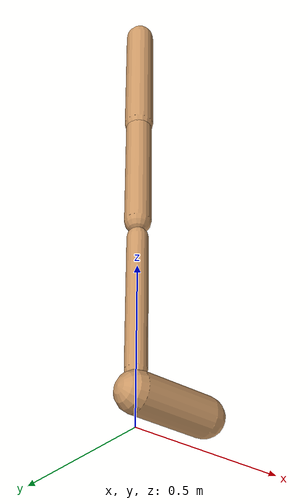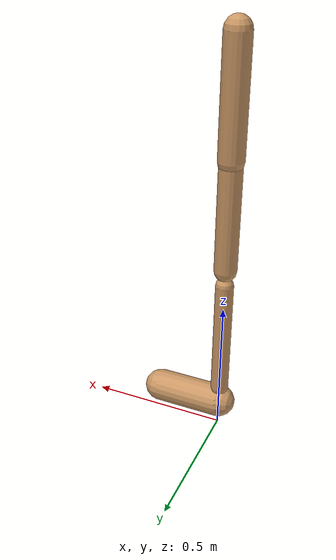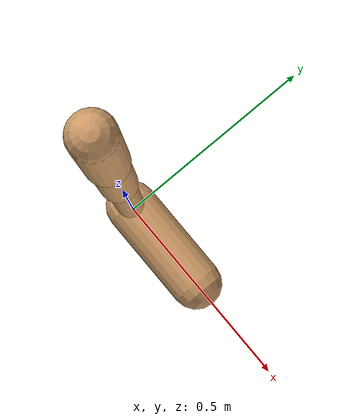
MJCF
<mujoco model="walker2d">
  <compiler angle="degree" coordinate="global" inertiafromgeom="true" />
  <default>
    <joint armature="0.01" damping=".1" limited="true" />
    <geom conaffinity="0" condim="3" contype="1" density="1000" friction="0.8 .1 .1" rgba="0.8 0.6 .4 1" />
  </default>
  <option integrator="RK4" timestep="0.002" />
  <worldbody>

    <body name="torso" pos="0 0 -0.12492915828648693">
      <joint armature="0" axis="1 0 0" damping="0" limited="false" name="ignorex" pos="0 0 0" stiffness="0" type="slide" />
      <joint armature="0" axis="0 0 1" damping="0" limited="false" name="ignorez" pos="0 0 0" ref="1.25" stiffness="0" type="slide" />
      <joint armature="0" axis="0 1 0" damping="0" limited="false" name="ignorey" pos="0 0 0" stiffness="0" type="hinge" />
      <geom fromto="0 0 1.45 0 0 1.05" name="torso_geom" size="0.044567001259496704" type="capsule" />
      <body name="thigh">
        <joint axis="0 -1 0" name="thigh_joint" pos="0 0 1.05" range="-150 0" type="hinge" />
        <geom fromto="0.0 0.0 1.05 0.0 0.0 0.6591769697146517" name="thigh_geom" size="0.040196526353467626" type="capsule" />
        <body name="leg" pos="0.0 0.0 0.059176969714651695">
          <joint axis="0 -1 0" name="leg_joint" pos="0 0 0.6" range="-150 0" type="hinge" />
          <geom fromto="0.0 0.0 0.6 0.0 0.0 0.1657521885718352" name="leg_geom" size="0.0321572210827741" type="capsule" />
          <body name="foot" pos="0.0 0.0 0.06575218857183521">
            <joint axis="0 -1 0" name="foot_joint" pos="0 0 0.1" range="-45 45" type="hinge" />
            <geom fromto="-0.0 0.0 0.1 0.23541576215613108 0.0 0.1" name="foot_geom" size="0.05983027384361958" type="capsule" />
          </body>
        </body>
      </body>

      <body name="thigh_left">
        <joint axis="0 -1 0" name="thigh_left_joint" pos="0 0 1.05" range="-150 0" type="hinge" />
        <geom fromto="0.0 0.0 1.05 0.0 0.0 0.6591769697146517" name="thigh_left_geom" rgba=".7 .3 .6 1" size="0.040196526353467626" type="capsule" />
        <body name="leg_left" pos="0.0 0.0 0.059176969714651695">
          <joint axis="0 -1 0" name="leg_left_joint" pos="0 0 0.6" range="-150 0" type="hinge" />
          <geom fromto="0.0 0.0 0.6 0.0 0.0 0.1657521885718352" name="leg_left_geom" rgba=".7 .3 .6 1" size="0.0321572210827741" type="capsule" />
          <body name="foot_left" pos="0.0 0.0 0.06575218857183521">
            <joint axis="0 -1 0" name="foot_left_joint" pos="0 0 0.1" range="-45 45" type="hinge" />
            <geom fromto="-0.0 0.0 0.1 0.23541576215613108 0.0 0.1" name="foot_left_geom" rgba=".7 .3 .6 1" size="0.05983027384361958" type="capsule" />
          </body>
        </body>
      </body>
    </body>
  </worldbody>
  <actuator>

    <motor ctrllimited="true" ctrlrange="-1.0 1.0" gear="100" joint="thigh_joint" />
    <motor ctrllimited="true" ctrlrange="-1.0 1.0" gear="100" joint="leg_joint" />
    <motor ctrllimited="true" ctrlrange="-1.0 1.0" gear="100" joint="foot_joint" />
    <motor ctrllimited="true" ctrlrange="-1.0 1.0" gear="100" joint="thigh_left_joint" />
    <motor ctrllimited="true" ctrlrange="-1.0 1.0" gear="100" joint="leg_left_joint" />
    <motor ctrllimited="true" ctrlrange="-1.0 1.0" gear="100" joint="foot_left_joint" />

  </actuator>
</mujoco>
